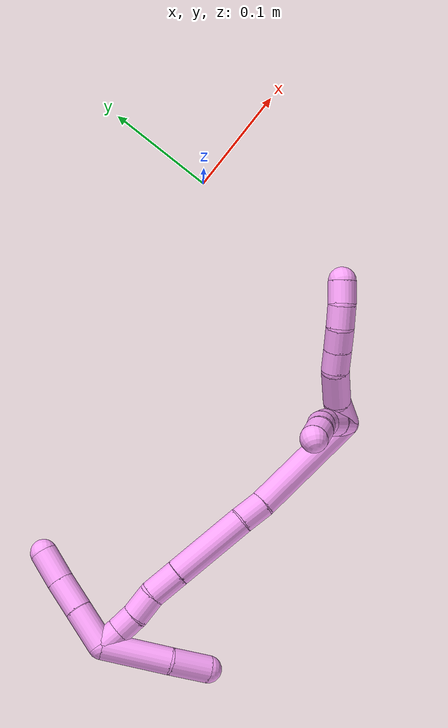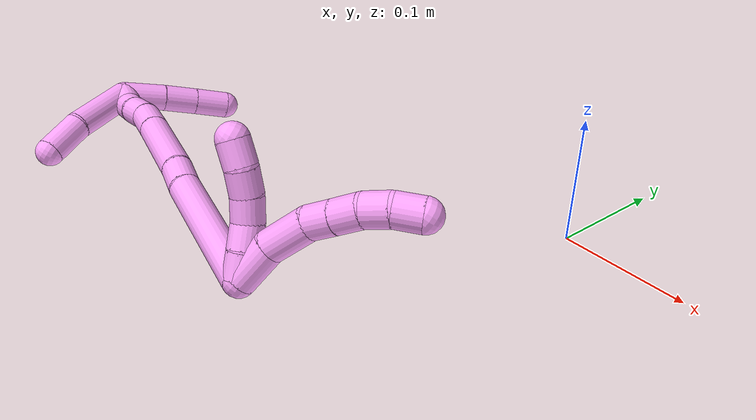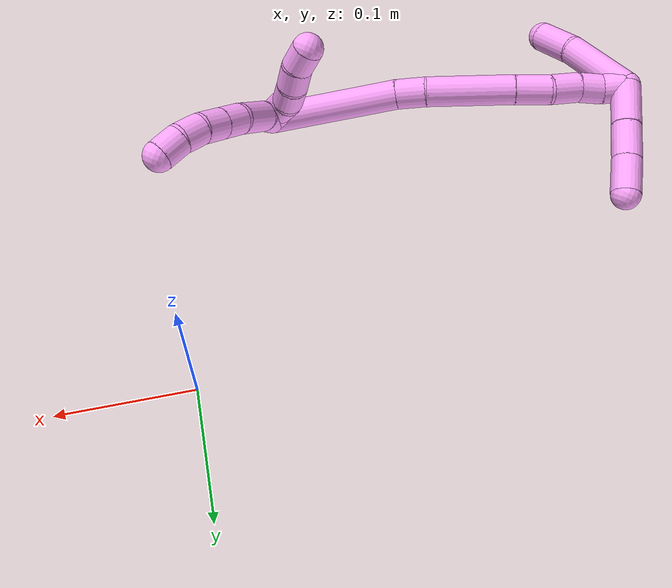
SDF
<sdf version="1.7">
 <world name="default">
  <model name="4">
   <static>0</static>
   <link name="4">
    <collision name="collision-cylinder-e_1_2_8">
     <pose>0.016416 -0.000974 -0.001739 2.63112 1.44999 2.56875</pose>
     <geometry><cylinder><radius>0.0125</radius><length>0.033073</length></cylinder></geometry>
     <surface>
      <friction><ode><mu>1.16</mu><mu2>1.16</mu2><slip1>0</slip1><slip2>0</slip2></ode></friction>
      <contact><ode><kp>1e+06</kp><kd>1</kd><max_vel>0</max_vel><min_depth>0.001</min_depth></ode></contact>
     </surface>
    </collision>
    <visual name="visual-cylinder-e_1_2_8">
     <pose>0.016416 -0.000974 -0.001739 2.63112 1.44999 2.56875</pose>
     <geometry><cylinder><radius>0.0125</radius><length>0.033073</length></cylinder></geometry>
     <material><ambient>1 0.65098 0.996078 1</ambient></material>
    </visual>
    <collision name="collision-cylinder-e_2_8_9">
     <pose>0.048898 -0.006604 -0.008852 2.42768 1.15409 2.10108</pose>
     <geometry><cylinder><radius>0.0125</radius><length>0.035138</length></cylinder></geometry>
     <surface>
      <friction><ode><mu>1.16</mu><mu2>1.16</mu2><slip1>0</slip1><slip2>0</slip2></ode></friction>
      <contact><ode><kp>1e+06</kp><kd>1</kd><max_vel>0</max_vel><min_depth>0.001</min_depth></ode></contact>
     </surface>
    </collision>
    <visual name="visual-cylinder-e_2_8_9">
     <pose>0.048898 -0.006604 -0.008852 2.42768 1.15409 2.10108</pose>
     <geometry><cylinder><radius>0.0125</radius><length>0.035138</length></cylinder></geometry>
     <material><ambient>1 0.65098 0.996078 1</ambient></material>
    </visual>
    <collision name="collision-cylinder-e_3_9_10">
     <pose>0.072637 -0.015573 -0.01918 2.42522 0.862895 1.77622</pose>
     <geometry><cylinder><radius>0.0125</radius><length>0.020201</length></cylinder></geometry>
     <surface>
      <friction><ode><mu>1.16</mu><mu2>1.16</mu2><slip1>0</slip1><slip2>0</slip2></ode></friction>
      <contact><ode><kp>1e+06</kp><kd>1</kd><max_vel>0</max_vel><min_depth>0.001</min_depth></ode></contact>
     </surface>
    </collision>
    <visual name="visual-cylinder-e_3_9_10">
     <pose>0.072637 -0.015573 -0.01918 2.42522 0.862895 1.77622</pose>
     <geometry><cylinder><radius>0.0125</radius><length>0.020201</length></cylinder></geometry>
     <material><ambient>1 0.65098 0.996078 1</ambient></material>
    </visual>
    <collision name="collision-cylinder-e_4_10_11">
     <pose>0.088338 -0.024232 -0.029195 2.43211 0.877386 1.80501</pose>
     <geometry><cylinder><radius>0.0125</radius><length>0.020875</length></cylinder></geometry>
     <surface>
      <friction><ode><mu>1.16</mu><mu2>1.16</mu2><slip1>0</slip1><slip2>0</slip2></ode></friction>
      <contact><ode><kp>1e+06</kp><kd>1</kd><max_vel>0</max_vel><min_depth>0.001</min_depth></ode></contact>
     </surface>
    </collision>
    <visual name="visual-cylinder-e_4_10_11">
     <pose>0.088338 -0.024232 -0.029195 2.43211 0.877386 1.80501</pose>
     <geometry><cylinder><radius>0.0125</radius><length>0.020875</length></cylinder></geometry>
     <material><ambient>1 0.65098 0.996078 1</ambient></material>
    </visual>
    <collision name="collision-cylinder-e_5_11_12">
     <pose>0.102728 -0.032569 -0.040987 2.60635 0.682699 1.82693</pose>
     <geometry><cylinder><radius>0.0125</radius><length>0.02017</length></cylinder></geometry>
     <surface>
      <friction><ode><mu>1.16</mu><mu2>1.16</mu2><slip1>0</slip1><slip2>0</slip2></ode></friction>
      <contact><ode><kp>1e+06</kp><kd>1</kd><max_vel>0</max_vel><min_depth>0.001</min_depth></ode></contact>
     </surface>
    </collision>
    <visual name="visual-cylinder-e_5_11_12">
     <pose>0.102728 -0.032569 -0.040987 2.60635 0.682699 1.82693</pose>
     <geometry><cylinder><radius>0.0125</radius><length>0.02017</length></cylinder></geometry>
     <material><ambient>1 0.65098 0.996078 1</ambient></material>
    </visual>
    <collision name="collision-cylinder-e_6_12_6">
     <pose>0.113784 -0.039764 -0.056273 2.78327 0.474579 1.85608</pose>
     <geometry><cylinder><radius>0.0125</radius><length>0.020542</length></cylinder></geometry>
     <surface>
      <friction><ode><mu>1.16</mu><mu2>1.16</mu2><slip1>0</slip1><slip2>0</slip2></ode></friction>
      <contact><ode><kp>1e+06</kp><kd>1</kd><max_vel>0</max_vel><min_depth>0.001</min_depth></ode></contact>
     </surface>
    </collision>
    <visual name="visual-cylinder-e_6_12_6">
     <pose>0.113784 -0.039764 -0.056273 2.78327 0.474579 1.85608</pose>
     <geometry><cylinder><radius>0.0125</radius><length>0.020542</length></cylinder></geometry>
     <material><ambient>1 0.65098 0.996078 1</ambient></material>
    </visual>
    <collision name="collision-cylinder-e_1_2_13">
     <pose>0.008885 0.002432 0.003892 -0.558475 1.09404 -0.345756</pose>
     <geometry><cylinder><radius>0.0125</radius><length>0.02</length></cylinder></geometry>
     <surface>
      <friction><ode><mu>1.16</mu><mu2>1.16</mu2><slip1>0</slip1><slip2>0</slip2></ode></friction>
      <contact><ode><kp>1e+06</kp><kd>1</kd><max_vel>0</max_vel><min_depth>0.001</min_depth></ode></contact>
     </surface>
    </collision>
    <visual name="visual-cylinder-e_1_2_13">
     <pose>0.008885 0.002432 0.003892 -0.558475 1.09404 -0.345756</pose>
     <geometry><cylinder><radius>0.0125</radius><length>0.02</length></cylinder></geometry>
     <material><ambient>1 0.65098 0.996078 1</ambient></material>
    </visual>
    <collision name="collision-cylinder-e_2_13_14">
     <pose>0.026244 0.008583 0.011571 -0.776369 1.01113 -0.445228</pose>
     <geometry><cylinder><radius>0.0125</radius><length>0.02</length></cylinder></geometry>
     <surface>
      <friction><ode><mu>1.16</mu><mu2>1.16</mu2><slip1>0</slip1><slip2>0</slip2></ode></friction>
      <contact><ode><kp>1e+06</kp><kd>1</kd><max_vel>0</max_vel><min_depth>0.001</min_depth></ode></contact>
     </surface>
    </collision>
    <visual name="visual-cylinder-e_2_13_14">
     <pose>0.026244 0.008583 0.011571 -0.776369 1.01113 -0.445228</pose>
     <geometry><cylinder><radius>0.0125</radius><length>0.02</length></cylinder></geometry>
     <material><ambient>1 0.65098 0.996078 1</ambient></material>
    </visual>
    <collision name="collision-cylinder-e_3_14_15">
     <pose>0.042944 0.013202 0.020974 -0.158695 0.96594 -0.083345</pose>
     <geometry><cylinder><radius>0.0125</radius><length>0.02</length></cylinder></geometry>
     <surface>
      <friction><ode><mu>1.16</mu><mu2>1.16</mu2><slip1>0</slip1><slip2>0</slip2></ode></friction>
      <contact><ode><kp>1e+06</kp><kd>1</kd><max_vel>0</max_vel><min_depth>0.001</min_depth></ode></contact>
     </surface>
    </collision>
    <visual name="visual-cylinder-e_3_14_15">
     <pose>0.042944 0.013202 0.020974 -0.158695 0.96594 -0.083345</pose>
     <geometry><cylinder><radius>0.0125</radius><length>0.02</length></cylinder></geometry>
     <material><ambient>1 0.65098 0.996078 1</ambient></material>
    </visual>
    <collision name="collision-cylinder-e_4_15_16">
     <pose>0.058418 0.01422 0.033477 -0.017319 0.810794 -0.007433</pose>
     <geometry><cylinder><radius>0.0125</radius><length>0.02</length></cylinder></geometry>
     <surface>
      <friction><ode><mu>1.16</mu><mu2>1.16</mu2><slip1>0</slip1><slip2>0</slip2></ode></friction>
      <contact><ode><kp>1e+06</kp><kd>1</kd><max_vel>0</max_vel><min_depth>0.001</min_depth></ode></contact>
     </surface>
    </collision>
    <visual name="visual-cylinder-e_4_15_16">
     <pose>0.058418 0.01422 0.033477 -0.017319 0.810794 -0.007433</pose>
     <geometry><cylinder><radius>0.0125</radius><length>0.02</length></cylinder></geometry>
     <material><ambient>1 0.65098 0.996078 1</ambient></material>
    </visual>
    <collision name="collision-cylinder-e_5_16_5">
     <pose>0.071945 0.016527 0.047835 -0.284947 0.678772 -0.101199</pose>
     <geometry><cylinder><radius>0.0125</radius><length>0.02</length></cylinder></geometry>
     <surface>
      <friction><ode><mu>1.16</mu><mu2>1.16</mu2><slip1>0</slip1><slip2>0</slip2></ode></friction>
      <contact><ode><kp>1e+06</kp><kd>1</kd><max_vel>0</max_vel><min_depth>0.001</min_depth></ode></contact>
     </surface>
    </collision>
    <visual name="visual-cylinder-e_5_16_5">
     <pose>0.071945 0.016527 0.047835 -0.284947 0.678772 -0.101199</pose>
     <geometry><cylinder><radius>0.0125</radius><length>0.02</length></cylinder></geometry>
     <material><ambient>1 0.65098 0.996078 1</ambient></material>
    </visual>
    <collision name="collision-cylinder-e_1_2_17">
     <pose>0.003145 0.044411 0.029482 -0.984749 0.058928 -0.031618</pose>
     <geometry><cylinder><radius>0.0125</radius><length>0.106796</length></cylinder></geometry>
     <surface>
      <friction><ode><mu>1.16</mu><mu2>1.16</mu2><slip1>0</slip1><slip2>0</slip2></ode></friction>
      <contact><ode><kp>1e+06</kp><kd>1</kd><max_vel>0</max_vel><min_depth>0.001</min_depth></ode></contact>
     </surface>
    </collision>
    <visual name="visual-cylinder-e_1_2_17">
     <pose>0.003145 0.044411 0.029482 -0.984749 0.058928 -0.031618</pose>
     <geometry><cylinder><radius>0.0125</radius><length>0.106796</length></cylinder></geometry>
     <material><ambient>1 0.65098 0.996078 1</ambient></material>
    </visual>
    <collision name="collision-cylinder-e_2_17_18">
     <pose>0.007392 0.099745 0.064571 -1.09658 0.089507 -0.05469</pose>
     <geometry><cylinder><radius>0.0125</radius><length>0.024657</length></cylinder></geometry>
     <surface>
      <friction><ode><mu>1.16</mu><mu2>1.16</mu2><slip1>0</slip1><slip2>0</slip2></ode></friction>
      <contact><ode><kp>1e+06</kp><kd>1</kd><max_vel>0</max_vel><min_depth>0.001</min_depth></ode></contact>
     </surface>
    </collision>
    <visual name="visual-cylinder-e_2_17_18">
     <pose>0.007392 0.099745 0.064571 -1.09658 0.089507 -0.05469</pose>
     <geometry><cylinder><radius>0.0125</radius><length>0.024657</length></cylinder></geometry>
     <material><ambient>1 0.65098 0.996078 1</ambient></material>
    </visual>
    <collision name="collision-cylinder-e_3_18_19">
     <pose>0.007149 0.143872 0.085536 -1.13754 -0.036731 0.023481</pose>
     <geometry><cylinder><radius>0.0125</radius><length>0.073213</length></cylinder></geometry>
     <surface>
      <friction><ode><mu>1.16</mu><mu2>1.16</mu2><slip1>0</slip1><slip2>0</slip2></ode></friction>
      <contact><ode><kp>1e+06</kp><kd>1</kd><max_vel>0</max_vel><min_depth>0.001</min_depth></ode></contact>
     </surface>
    </collision>
    <visual name="visual-cylinder-e_3_18_19">
     <pose>0.007149 0.143872 0.085536 -1.13754 -0.036731 0.023481</pose>
     <geometry><cylinder><radius>0.0125</radius><length>0.073213</length></cylinder></geometry>
     <material><ambient>1 0.65098 0.996078 1</ambient></material>
    </visual>
    <collision name="collision-cylinder-e_4_19_20">
     <pose>0.004754 0.190729 0.106845 -1.15988 -0.07043 0.046148</pose>
     <geometry><cylinder><radius>0.0125</radius><length>0.029866</length></cylinder></geometry>
     <surface>
      <friction><ode><mu>1.16</mu><mu2>1.16</mu2><slip1>0</slip1><slip2>0</slip2></ode></friction>
      <contact><ode><kp>1e+06</kp><kd>1</kd><max_vel>0</max_vel><min_depth>0.001</min_depth></ode></contact>
     </surface>
    </collision>
    <visual name="visual-cylinder-e_4_19_20">
     <pose>0.004754 0.190729 0.106845 -1.15988 -0.07043 0.046148</pose>
     <geometry><cylinder><radius>0.0125</radius><length>0.029866</length></cylinder></geometry>
     <material><ambient>1 0.65098 0.996078 1</ambient></material>
    </visual>
    <collision name="collision-cylinder-e_5_20_21">
     <pose>0.000397 0.214472 0.118709 -1.04051 -0.275592 0.158562</pose>
     <geometry><cylinder><radius>0.0125</radius><length>0.024302</length></cylinder></geometry>
     <surface>
      <friction><ode><mu>1.16</mu><mu2>1.16</mu2><slip1>0</slip1><slip2>0</slip2></ode></friction>
      <contact><ode><kp>1e+06</kp><kd>1</kd><max_vel>0</max_vel><min_depth>0.001</min_depth></ode></contact>
     </surface>
    </collision>
    <visual name="visual-cylinder-e_5_20_21">
     <pose>0.000397 0.214472 0.118709 -1.04051 -0.275592 0.158562</pose>
     <geometry><cylinder><radius>0.0125</radius><length>0.024302</length></cylinder></geometry>
     <material><ambient>1 0.65098 0.996078 1</ambient></material>
    </visual>
    <collision name="collision-cylinder-e_6_21_22">
     <pose>-0.00545 0.234098 0.128325 -1.20058 -0.243342 0.16702</pose>
     <geometry><cylinder><radius>0.0125</radius><length>0.021086</length></cylinder></geometry>
     <surface>
      <friction><ode><mu>1.16</mu><mu2>1.16</mu2><slip1>0</slip1><slip2>0</slip2></ode></friction>
      <contact><ode><kp>1e+06</kp><kd>1</kd><max_vel>0</max_vel><min_depth>0.001</min_depth></ode></contact>
     </surface>
    </collision>
    <visual name="visual-cylinder-e_6_21_22">
     <pose>-0.00545 0.234098 0.128325 -1.20058 -0.243342 0.16702</pose>
     <geometry><cylinder><radius>0.0125</radius><length>0.021086</length></cylinder></geometry>
     <material><ambient>1 0.65098 0.996078 1</ambient></material>
    </visual>
    <collision name="collision-cylinder-e_7_22_1">
     <pose>-0.007403 0.252397 0.136898 -1.06334 0.058577 -0.034459</pose>
     <geometry><cylinder><radius>0.0125</radius><length>0.020078</length></cylinder></geometry>
     <surface>
      <friction><ode><mu>1.16</mu><mu2>1.16</mu2><slip1>0</slip1><slip2>0</slip2></ode></friction>
      <contact><ode><kp>1e+06</kp><kd>1</kd><max_vel>0</max_vel><min_depth>0.001</min_depth></ode></contact>
     </surface>
    </collision>
    <visual name="visual-cylinder-e_7_22_1">
     <pose>-0.007403 0.252397 0.136898 -1.06334 0.058577 -0.034459</pose>
     <geometry><cylinder><radius>0.0125</radius><length>0.020078</length></cylinder></geometry>
     <material><ambient>1 0.65098 0.996078 1</ambient></material>
    </visual>
    <collision name="collision-cylinder-e_1_1_23">
     <pose>0.000984 0.267024 0.125232 -2.80056 0.418226 -1.77831</pose>
     <geometry><cylinder><radius>0.0125</radius><length>0.038404</length></cylinder></geometry>
     <surface>
      <friction><ode><mu>1.16</mu><mu2>1.16</mu2><slip1>0</slip1><slip2>0</slip2></ode></friction>
      <contact><ode><kp>1e+06</kp><kd>1</kd><max_vel>0</max_vel><min_depth>0.001</min_depth></ode></contact>
     </surface>
    </collision>
    <visual name="visual-cylinder-e_1_1_23">
     <pose>0.000984 0.267024 0.125232 -2.80056 0.418226 -1.77831</pose>
     <geometry><cylinder><radius>0.0125</radius><length>0.038404</length></cylinder></geometry>
     <material><ambient>1 0.65098 0.996078 1</ambient></material>
    </visual>
    <collision name="collision-cylinder-e_2_23_24">
     <pose>0.014291 0.277819 0.095187 -2.79192 0.365896 -1.61713</pose>
     <geometry><cylinder><radius>0.0125</radius><length>0.030795</length></cylinder></geometry>
     <surface>
      <friction><ode><mu>1.16</mu><mu2>1.16</mu2><slip1>0</slip1><slip2>0</slip2></ode></friction>
      <contact><ode><kp>1e+06</kp><kd>1</kd><max_vel>0</max_vel><min_depth>0.001</min_depth></ode></contact>
     </surface>
    </collision>
    <visual name="visual-cylinder-e_2_23_24">
     <pose>0.014291 0.277819 0.095187 -2.79192 0.365896 -1.61713</pose>
     <geometry><cylinder><radius>0.0125</radius><length>0.030795</length></cylinder></geometry>
     <material><ambient>1 0.65098 0.996078 1</ambient></material>
    </visual>
    <collision name="collision-cylinder-e_3_24_4">
     <pose>0.025356 0.28709 0.067988 -2.83426 0.36906 -1.75627</pose>
     <geometry><cylinder><radius>0.0125</radius><length>0.030801</length></cylinder></geometry>
     <surface>
      <friction><ode><mu>1.16</mu><mu2>1.16</mu2><slip1>0</slip1><slip2>0</slip2></ode></friction>
      <contact><ode><kp>1e+06</kp><kd>1</kd><max_vel>0</max_vel><min_depth>0.001</min_depth></ode></contact>
     </surface>
    </collision>
    <visual name="visual-cylinder-e_3_24_4">
     <pose>0.025356 0.28709 0.067988 -2.83426 0.36906 -1.75627</pose>
     <geometry><cylinder><radius>0.0125</radius><length>0.030801</length></cylinder></geometry>
     <material><ambient>1 0.65098 0.996078 1</ambient></material>
    </visual>
    <collision name="collision-cylinder-e_1_1_25">
     <pose>-0.022693 0.235389 0.150839 1.2323 -0.526523 -0.377161</pose>
     <geometry><cylinder><radius>0.0125</radius><length>0.063193</length></cylinder></geometry>
     <surface>
      <friction><ode><mu>1.16</mu><mu2>1.16</mu2><slip1>0</slip1><slip2>0</slip2></ode></friction>
      <contact><ode><kp>1e+06</kp><kd>1</kd><max_vel>0</max_vel><min_depth>0.001</min_depth></ode></contact>
     </surface>
    </collision>
    <visual name="visual-cylinder-e_1_1_25">
     <pose>-0.022693 0.235389 0.150839 1.2323 -0.526523 -0.377161</pose>
     <geometry><cylinder><radius>0.0125</radius><length>0.063193</length></cylinder></geometry>
     <material><ambient>1 0.65098 0.996078 1</ambient></material>
    </visual>
    <collision name="collision-cylinder-e_2_25_3">
     <pose>-0.050602 0.196072 0.163127 1.33771 -0.712484 -0.572108</pose>
     <geometry><cylinder><radius>0.0125</radius><length>0.036807</length></cylinder></geometry>
     <surface>
      <friction><ode><mu>1.16</mu><mu2>1.16</mu2><slip1>0</slip1><slip2>0</slip2></ode></friction>
      <contact><ode><kp>1e+06</kp><kd>1</kd><max_vel>0</max_vel><min_depth>0.001</min_depth></ode></contact>
     </surface>
    </collision>
    <visual name="visual-cylinder-e_2_25_3">
     <pose>-0.050602 0.196072 0.163127 1.33771 -0.712484 -0.572108</pose>
     <geometry><cylinder><radius>0.0125</radius><length>0.036807</length></cylinder></geometry>
     <material><ambient>1 0.65098 0.996078 1</ambient></material>
    </visual>
    <collision name="collision-sphere-3">
     <pose>-0.062633 0.182522 0.166344 0 -0 0</pose>
     <geometry><sphere><radius>0.0125</radius></sphere></geometry>
     <surface>
      <friction><ode><mu>1.16</mu><mu2>1.16</mu2><slip1>0</slip1><slip2>0</slip2></ode></friction>
      <contact><ode><kp>1e+06</kp><kd>1</kd><max_vel>0</max_vel><min_depth>0.001</min_depth></ode></contact>
     </surface>
    </collision>
    <visual name="visual-sphere-3">
     <pose>-0.062633 0.182522 0.166344 0 -0 0</pose>
     <geometry><sphere><radius>0.0125</radius></sphere></geometry>
     <material><ambient>1 0.65098 0.996078 1</ambient></material>
    </visual>
    <collision name="collision-sphere-25">
     <pose>-0.038571 0.209622 0.15991 0 -0 0</pose>
     <geometry><sphere><radius>0.0125</radius></sphere></geometry>
     <surface>
      <friction><ode><mu>1.16</mu><mu2>1.16</mu2><slip1>0</slip1><slip2>0</slip2></ode></friction>
      <contact><ode><kp>1e+06</kp><kd>1</kd><max_vel>0</max_vel><min_depth>0.001</min_depth></ode></contact>
     </surface>
    </collision>
    <visual name="visual-sphere-25">
     <pose>-0.038571 0.209622 0.15991 0 -0 0</pose>
     <geometry><sphere><radius>0.0125</radius></sphere></geometry>
     <material><ambient>1 0.65098 0.996078 1</ambient></material>
    </visual>
    <collision name="collision-sphere-4">
     <pose>0.030912 0.291435 0.054298 0 -0 0</pose>
     <geometry><sphere><radius>0.0125</radius></sphere></geometry>
     <surface>
      <friction><ode><mu>1.16</mu><mu2>1.16</mu2><slip1>0</slip1><slip2>0</slip2></ode></friction>
      <contact><ode><kp>1e+06</kp><kd>1</kd><max_vel>0</max_vel><min_depth>0.001</min_depth></ode></contact>
     </surface>
    </collision>
    <visual name="visual-sphere-4">
     <pose>0.030912 0.291435 0.054298 0 -0 0</pose>
     <geometry><sphere><radius>0.0125</radius></sphere></geometry>
     <material><ambient>1 0.65098 0.996078 1</ambient></material>
    </visual>
    <collision name="collision-sphere-24">
     <pose>0.0198 0.282745 0.081679 0 -0 0</pose>
     <geometry><sphere><radius>0.0125</radius></sphere></geometry>
     <surface>
      <friction><ode><mu>1.16</mu><mu2>1.16</mu2><slip1>0</slip1><slip2>0</slip2></ode></friction>
      <contact><ode><kp>1e+06</kp><kd>1</kd><max_vel>0</max_vel><min_depth>0.001</min_depth></ode></contact>
     </surface>
    </collision>
    <visual name="visual-sphere-24">
     <pose>0.0198 0.282745 0.081679 0 -0 0</pose>
     <geometry><sphere><radius>0.0125</radius></sphere></geometry>
     <material><ambient>1 0.65098 0.996078 1</ambient></material>
    </visual>
    <collision name="collision-sphere-23">
     <pose>0.008782 0.272893 0.108695 0 -0 0</pose>
     <geometry><sphere><radius>0.0125</radius></sphere></geometry>
     <surface>
      <friction><ode><mu>1.16</mu><mu2>1.16</mu2><slip1>0</slip1><slip2>0</slip2></ode></friction>
      <contact><ode><kp>1e+06</kp><kd>1</kd><max_vel>0</max_vel><min_depth>0.001</min_depth></ode></contact>
     </surface>
    </collision>
    <visual name="visual-sphere-23">
     <pose>0.008782 0.272893 0.108695 0 -0 0</pose>
     <geometry><sphere><radius>0.0125</radius></sphere></geometry>
     <material><ambient>1 0.65098 0.996078 1</ambient></material>
    </visual>
    <collision name="collision-sphere-1">
     <pose>-0.006815 0.261156 0.141768 0 -0 0</pose>
     <geometry><sphere><radius>0.0125</radius></sphere></geometry>
     <surface>
      <friction><ode><mu>1.16</mu><mu2>1.16</mu2><slip1>0</slip1><slip2>0</slip2></ode></friction>
      <contact><ode><kp>1e+06</kp><kd>1</kd><max_vel>0</max_vel><min_depth>0.001</min_depth></ode></contact>
     </surface>
    </collision>
    <visual name="visual-sphere-1">
     <pose>-0.006815 0.261156 0.141768 0 -0 0</pose>
     <geometry><sphere><radius>0.0125</radius></sphere></geometry>
     <material><ambient>1 0.65098 0.996078 1</ambient></material>
    </visual>
    <collision name="collision-sphere-22">
     <pose>-0.00799 0.243637 0.132027 0 -0 0</pose>
     <geometry><sphere><radius>0.0125</radius></sphere></geometry>
     <surface>
      <friction><ode><mu>1.16</mu><mu2>1.16</mu2><slip1>0</slip1><slip2>0</slip2></ode></friction>
      <contact><ode><kp>1e+06</kp><kd>1</kd><max_vel>0</max_vel><min_depth>0.001</min_depth></ode></contact>
     </surface>
    </collision>
    <visual name="visual-sphere-22">
     <pose>-0.00799 0.243637 0.132027 0 -0 0</pose>
     <geometry><sphere><radius>0.0125</radius></sphere></geometry>
     <material><ambient>1 0.65098 0.996078 1</ambient></material>
    </visual>
    <collision name="collision-sphere-21">
     <pose>-0.00291 0.224559 0.124623 0 -0 0</pose>
     <geometry><sphere><radius>0.0125</radius></sphere></geometry>
     <surface>
      <friction><ode><mu>1.16</mu><mu2>1.16</mu2><slip1>0</slip1><slip2>0</slip2></ode></friction>
      <contact><ode><kp>1e+06</kp><kd>1</kd><max_vel>0</max_vel><min_depth>0.001</min_depth></ode></contact>
     </surface>
    </collision>
    <visual name="visual-sphere-21">
     <pose>-0.00291 0.224559 0.124623 0 -0 0</pose>
     <geometry><sphere><radius>0.0125</radius></sphere></geometry>
     <material><ambient>1 0.65098 0.996078 1</ambient></material>
    </visual>
    <collision name="collision-sphere-12">
     <pose>0.109091 -0.03656 -0.047717 0 -0 0</pose>
     <geometry><sphere><radius>0.0125</radius></sphere></geometry>
     <surface>
      <friction><ode><mu>1.16</mu><mu2>1.16</mu2><slip1>0</slip1><slip2>0</slip2></ode></friction>
      <contact><ode><kp>1e+06</kp><kd>1</kd><max_vel>0</max_vel><min_depth>0.001</min_depth></ode></contact>
     </surface>
    </collision>
    <visual name="visual-sphere-12">
     <pose>0.109091 -0.03656 -0.047717 0 -0 0</pose>
     <geometry><sphere><radius>0.0125</radius></sphere></geometry>
     <material><ambient>1 0.65098 0.996078 1</ambient></material>
    </visual>
    <collision name="collision-sphere-11">
     <pose>0.096366 -0.028578 -0.034257 0 -0 0</pose>
     <geometry><sphere><radius>0.0125</radius></sphere></geometry>
     <surface>
      <friction><ode><mu>1.16</mu><mu2>1.16</mu2><slip1>0</slip1><slip2>0</slip2></ode></friction>
      <contact><ode><kp>1e+06</kp><kd>1</kd><max_vel>0</max_vel><min_depth>0.001</min_depth></ode></contact>
     </surface>
    </collision>
    <visual name="visual-sphere-11">
     <pose>0.096366 -0.028578 -0.034257 0 -0 0</pose>
     <geometry><sphere><radius>0.0125</radius></sphere></geometry>
     <material><ambient>1 0.65098 0.996078 1</ambient></material>
    </visual>
    <collision name="collision-sphere-10">
     <pose>0.080311 -0.019886 -0.024133 0 -0 0</pose>
     <geometry><sphere><radius>0.0125</radius></sphere></geometry>
     <surface>
      <friction><ode><mu>1.16</mu><mu2>1.16</mu2><slip1>0</slip1><slip2>0</slip2></ode></friction>
      <contact><ode><kp>1e+06</kp><kd>1</kd><max_vel>0</max_vel><min_depth>0.001</min_depth></ode></contact>
     </surface>
    </collision>
    <visual name="visual-sphere-10">
     <pose>0.080311 -0.019886 -0.024133 0 -0 0</pose>
     <geometry><sphere><radius>0.0125</radius></sphere></geometry>
     <material><ambient>1 0.65098 0.996078 1</ambient></material>
    </visual>
    <collision name="collision-sphere-9">
     <pose>0.064963 -0.01126 -0.014227 0 -0 0</pose>
     <geometry><sphere><radius>0.0125</radius></sphere></geometry>
     <surface>
      <friction><ode><mu>1.16</mu><mu2>1.16</mu2><slip1>0</slip1><slip2>0</slip2></ode></friction>
      <contact><ode><kp>1e+06</kp><kd>1</kd><max_vel>0</max_vel><min_depth>0.001</min_depth></ode></contact>
     </surface>
    </collision>
    <visual name="visual-sphere-9">
     <pose>0.064963 -0.01126 -0.014227 0 -0 0</pose>
     <geometry><sphere><radius>0.0125</radius></sphere></geometry>
     <material><ambient>1 0.65098 0.996078 1</ambient></material>
    </visual>
    <collision name="collision-sphere-2">
     <geometry><sphere><radius>0.0125</radius></sphere></geometry>
     <surface>
      <friction><ode><mu>1.16</mu><mu2>1.16</mu2><slip1>0</slip1><slip2>0</slip2></ode></friction>
      <contact><ode><kp>1e+06</kp><kd>1</kd><max_vel>0</max_vel><min_depth>0.001</min_depth></ode></contact>
     </surface>
    </collision>
    <visual name="visual-sphere-2">
     <geometry><sphere><radius>0.0125</radius></sphere></geometry>
     <material><ambient>1 0.65098 0.996078 1</ambient></material>
    </visual>
    <collision name="collision-sphere-19">
     <pose>0.005805 0.177073 0.100895 0 -0 0</pose>
     <geometry><sphere><radius>0.0125</radius></sphere></geometry>
     <surface>
      <friction><ode><mu>1.16</mu><mu2>1.16</mu2><slip1>0</slip1><slip2>0</slip2></ode></friction>
      <contact><ode><kp>1e+06</kp><kd>1</kd><max_vel>0</max_vel><min_depth>0.001</min_depth></ode></contact>
     </surface>
    </collision>
    <visual name="visual-sphere-19">
     <pose>0.005805 0.177073 0.100895 0 -0 0</pose>
     <geometry><sphere><radius>0.0125</radius></sphere></geometry>
     <material><ambient>1 0.65098 0.996078 1</ambient></material>
    </visual>
    <collision name="collision-sphere-8">
     <pose>0.032832 -0.001947 -0.003478 0 -0 0</pose>
     <geometry><sphere><radius>0.0125</radius></sphere></geometry>
     <surface>
      <friction><ode><mu>1.16</mu><mu2>1.16</mu2><slip1>0</slip1><slip2>0</slip2></ode></friction>
      <contact><ode><kp>1e+06</kp><kd>1</kd><max_vel>0</max_vel><min_depth>0.001</min_depth></ode></contact>
     </surface>
    </collision>
    <visual name="visual-sphere-8">
     <pose>0.032832 -0.001947 -0.003478 0 -0 0</pose>
     <geometry><sphere><radius>0.0125</radius></sphere></geometry>
     <material><ambient>1 0.65098 0.996078 1</ambient></material>
    </visual>
    <collision name="collision-sphere-6">
     <pose>0.118478 -0.042968 -0.064829 0 -0 0</pose>
     <geometry><sphere><radius>0.0125</radius></sphere></geometry>
     <surface>
      <friction><ode><mu>1.16</mu><mu2>1.16</mu2><slip1>0</slip1><slip2>0</slip2></ode></friction>
      <contact><ode><kp>1e+06</kp><kd>1</kd><max_vel>0</max_vel><min_depth>0.001</min_depth></ode></contact>
     </surface>
    </collision>
    <visual name="visual-sphere-6">
     <pose>0.118478 -0.042968 -0.064829 0 -0 0</pose>
     <geometry><sphere><radius>0.0125</radius></sphere></geometry>
     <material><ambient>1 0.65098 0.996078 1</ambient></material>
    </visual>
    <collision name="collision-sphere-13">
     <pose>0.01777 0.004863 0.007784 0 -0 0</pose>
     <geometry><sphere><radius>0.0125</radius></sphere></geometry>
     <surface>
      <friction><ode><mu>1.16</mu><mu2>1.16</mu2><slip1>0</slip1><slip2>0</slip2></ode></friction>
      <contact><ode><kp>1e+06</kp><kd>1</kd><max_vel>0</max_vel><min_depth>0.001</min_depth></ode></contact>
     </surface>
    </collision>
    <visual name="visual-sphere-13">
     <pose>0.01777 0.004863 0.007784 0 -0 0</pose>
     <geometry><sphere><radius>0.0125</radius></sphere></geometry>
     <material><ambient>1 0.65098 0.996078 1</ambient></material>
    </visual>
    <collision name="collision-sphere-14">
     <pose>0.034718 0.012303 0.015359 0 -0 0</pose>
     <geometry><sphere><radius>0.0125</radius></sphere></geometry>
     <surface>
      <friction><ode><mu>1.16</mu><mu2>1.16</mu2><slip1>0</slip1><slip2>0</slip2></ode></friction>
      <contact><ode><kp>1e+06</kp><kd>1</kd><max_vel>0</max_vel><min_depth>0.001</min_depth></ode></contact>
     </surface>
    </collision>
    <visual name="visual-sphere-14">
     <pose>0.034718 0.012303 0.015359 0 -0 0</pose>
     <geometry><sphere><radius>0.0125</radius></sphere></geometry>
     <material><ambient>1 0.65098 0.996078 1</ambient></material>
    </visual>
    <collision name="collision-sphere-15">
     <pose>0.05117 0.014101 0.026589 0 -0 0</pose>
     <geometry><sphere><radius>0.0125</radius></sphere></geometry>
     <surface>
      <friction><ode><mu>1.16</mu><mu2>1.16</mu2><slip1>0</slip1><slip2>0</slip2></ode></friction>
      <contact><ode><kp>1e+06</kp><kd>1</kd><max_vel>0</max_vel><min_depth>0.001</min_depth></ode></contact>
     </surface>
    </collision>
    <visual name="visual-sphere-15">
     <pose>0.05117 0.014101 0.026589 0 -0 0</pose>
     <geometry><sphere><radius>0.0125</radius></sphere></geometry>
     <material><ambient>1 0.65098 0.996078 1</ambient></material>
    </visual>
    <collision name="collision-sphere-16">
     <pose>0.065667 0.014339 0.040366 0 -0 0</pose>
     <geometry><sphere><radius>0.0125</radius></sphere></geometry>
     <surface>
      <friction><ode><mu>1.16</mu><mu2>1.16</mu2><slip1>0</slip1><slip2>0</slip2></ode></friction>
      <contact><ode><kp>1e+06</kp><kd>1</kd><max_vel>0</max_vel><min_depth>0.001</min_depth></ode></contact>
     </surface>
    </collision>
    <visual name="visual-sphere-16">
     <pose>0.065667 0.014339 0.040366 0 -0 0</pose>
     <geometry><sphere><radius>0.0125</radius></sphere></geometry>
     <material><ambient>1 0.65098 0.996078 1</ambient></material>
    </visual>
    <collision name="collision-sphere-5">
     <pose>0.078224 0.018715 0.055305 0 -0 0</pose>
     <geometry><sphere><radius>0.0125</radius></sphere></geometry>
     <surface>
      <friction><ode><mu>1.16</mu><mu2>1.16</mu2><slip1>0</slip1><slip2>0</slip2></ode></friction>
      <contact><ode><kp>1e+06</kp><kd>1</kd><max_vel>0</max_vel><min_depth>0.001</min_depth></ode></contact>
     </surface>
    </collision>
    <visual name="visual-sphere-5">
     <pose>0.078224 0.018715 0.055305 0 -0 0</pose>
     <geometry><sphere><radius>0.0125</radius></sphere></geometry>
     <material><ambient>1 0.65098 0.996078 1</ambient></material>
    </visual>
    <collision name="collision-sphere-17">
     <pose>0.00629 0.088821 0.058964 0 -0 0</pose>
     <geometry><sphere><radius>0.0125</radius></sphere></geometry>
     <surface>
      <friction><ode><mu>1.16</mu><mu2>1.16</mu2><slip1>0</slip1><slip2>0</slip2></ode></friction>
      <contact><ode><kp>1e+06</kp><kd>1</kd><max_vel>0</max_vel><min_depth>0.001</min_depth></ode></contact>
     </surface>
    </collision>
    <visual name="visual-sphere-17">
     <pose>0.00629 0.088821 0.058964 0 -0 0</pose>
     <geometry><sphere><radius>0.0125</radius></sphere></geometry>
     <material><ambient>1 0.65098 0.996078 1</ambient></material>
    </visual>
    <collision name="collision-sphere-18">
     <pose>0.008494 0.11067 0.070178 0 -0 0</pose>
     <geometry><sphere><radius>0.0125</radius></sphere></geometry>
     <surface>
      <friction><ode><mu>1.16</mu><mu2>1.16</mu2><slip1>0</slip1><slip2>0</slip2></ode></friction>
      <contact><ode><kp>1e+06</kp><kd>1</kd><max_vel>0</max_vel><min_depth>0.001</min_depth></ode></contact>
     </surface>
    </collision>
    <visual name="visual-sphere-18">
     <pose>0.008494 0.11067 0.070178 0 -0 0</pose>
     <geometry><sphere><radius>0.0125</radius></sphere></geometry>
     <material><ambient>1 0.65098 0.996078 1</ambient></material>
    </visual>
    <collision name="collision-sphere-20">
     <pose>0.003703 0.204385 0.112795 0 -0 0</pose>
     <geometry><sphere><radius>0.0125</radius></sphere></geometry>
     <surface>
      <friction><ode><mu>1.16</mu><mu2>1.16</mu2><slip1>0</slip1><slip2>0</slip2></ode></friction>
      <contact><ode><kp>1e+06</kp><kd>1</kd><max_vel>0</max_vel><min_depth>0.001</min_depth></ode></contact>
     </surface>
    </collision>
    <visual name="visual-sphere-20">
     <pose>0.003703 0.204385 0.112795 0 -0 0</pose>
     <geometry><sphere><radius>0.0125</radius></sphere></geometry>
     <material><ambient>1 0.65098 0.996078 1</ambient></material>
    </visual>
    <inertial>
     <pose>0.01739 0.115912 0.062549 0 -0 0</pose>
     <mass>0.75</mass>
     <inertia>
      <ixx>0.000169</ixx>
      <ixy>0</ixy>
      <ixz>0</ixz>
      <iyy>0.000112</iyy>
      <iyz>0</iyz>
      <izz>-0.000115</izz>
     </inertia>
    </inertial>
   </link>
   <pose>-0.092436 -0.237181 0.012233 -0.325448 -0.936322 1.25067</pose>
  </model>
 </world>
</sdf>
